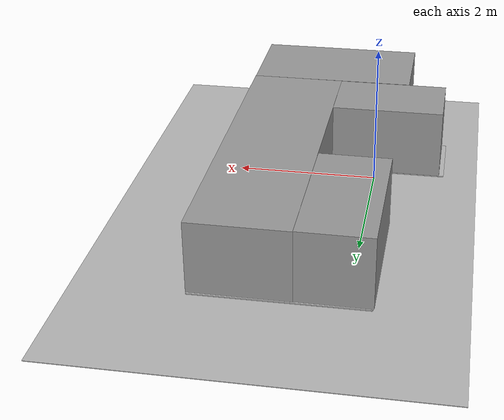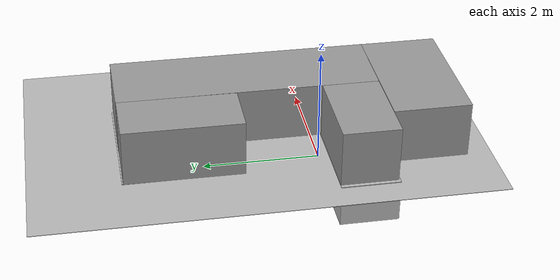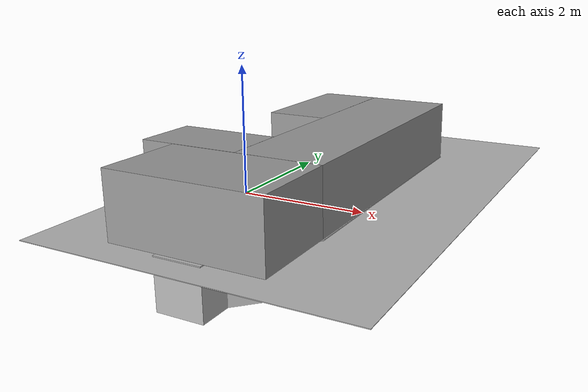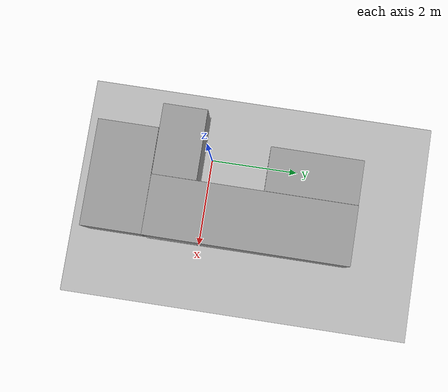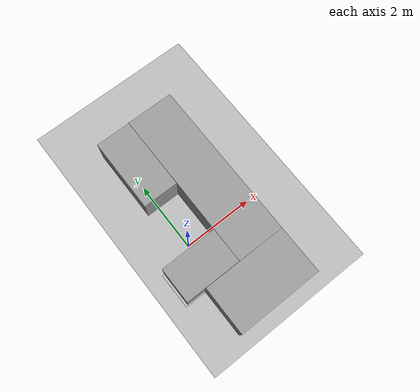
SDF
<sdf version="1.7">
 <world name="default">
  <model name="ground">
   <static>1</static>
   <link name="link">
    <pose>0 0 -0.005 0 -0 0</pose>
    <collision name="collision"><geometry><box><size>5 8 0.01</size></box></geometry></collision>
    <visual name="visual"><geometry><box><size>5 8 0.01</size></box></geometry></visual>
   </link>
   <pose>1 1 0 0 -0 0</pose>
  </model>
  <light name="lab_light" type="directional">
   <pose>0.86 1.96 2.5 -1.55 0 0</pose>
   <diffuse>0.8 0.8 0.8 1</diffuse>
   <specular>0.2 0.2 0.2 1</specular>
   <attenuation>
    <range>20</range>
    <constant>0.9</constant>
    <linear>0.01</linear>
    <quadratic>0.001</quadratic>
   </attenuation>
   <direction>0 0 -1</direction>
   <spot><inner_angle>0</inner_angle><outer_angle>0</outer_angle><falloff>0</falloff></spot>
  </light>
  <physics type="ode">
   <ode>
    <solver>
     <type>quick</type>
     <iters>100</iters>
     <precon_iters>0</precon_iters>
     <sor>1</sor>
     <use_dynamic_moi_rescaling>0</use_dynamic_moi_rescaling>
    </solver>
    <constraints>
     <cfm>0</cfm>
     <erp>0.5</erp>
     <contact_max_correcting_vel>1000</contact_max_correcting_vel>
     <contact_surface_layer>0</contact_surface_layer>
    </constraints>
   </ode>
   <real_time_update_rate>0</real_time_update_rate>
   <max_step_size>0.001</max_step_size>
   <real_time_factor>1</real_time_factor>
  </physics>
  <scene><ambient>0.4 0.4 0.4 1</ambient><background>0.7 0.7 1 1</background><shadows>1</shadows></scene>
  <gravity>0 0 -9.81</gravity>
  <magnetic_field>6e-06 2.3e-05 -4.2e-05</magnetic_field>
  <atmosphere type="adiabatic"/>
  <spherical_coordinates>
   <surface_model>EARTH_WGS84</surface_model>
   <latitude_deg>0</latitude_deg>
   <longitude_deg>0</longitude_deg>
   <elevation>0</elevation>
   <heading_deg>0</heading_deg>
  </spherical_coordinates>
  <model name="filling_line">
   <static>1</static>
   <link name="link">
    <inertial><mass>20</mass></inertial>
    <collision name="collision">
     <geometry><mesh><uri>model://filling_line/meshes/filling_line.stl</uri></mesh></geometry>
    </collision>
    <visual name="visual">
     <geometry><mesh><uri>model://filling_line/meshes/filling_line.stl</uri></mesh></geometry>
    </visual>
   </link>
   <pose>1.10668 -2.60009 -0.74 0 0 -3.13911</pose>
  </model>
  <model name="unit_box">
   <pose>1.3322 1.09656 0.514992 5e-06 1.8e-05 -0.00198</pose>
   <link name="link">
    <inertial>
     <mass>1</mass>
     <inertia>
      <ixx>0.166667</ixx>
      <ixy>0</ixy>
      <ixz>0</ixz>
      <iyy>0.166667</iyy>
      <iyz>0</iyz>
      <izz>0.166667</izz>
     </inertia>
    </inertial>
    <collision name="collision"><geometry><box><size>1.34986 4.5902 1</size></box></geometry></collision>
    <visual name="visual">
     <geometry><box><size>1.34986 4.5902 1</size></box></geometry>
     <material>
      <script><name>Gazebo/Grey</name><uri>file://media/materials/scripts/gazebo.material</uri></script>
     </material>
    </visual>
   </link>
  </model>
  <model name="unit_box_0">
   <pose>-0.147241 -0.691725 0.515 -0 -0 -0.000681</pose>
   <link name="link">
    <inertial>
     <mass>1</mass>
     <inertia>
      <ixx>0.166667</ixx>
      <ixy>0</ixy>
      <ixz>0</ixz>
      <iyy>0.166667</iyy>
      <iyz>0</iyz>
      <izz>0.166667</izz>
     </inertia>
    </inertial>
    <collision name="collision"><geometry><box><size>1.59998 1 1</size></box></geometry></collision>
    <visual name="visual">
     <geometry><box><size>1.59998 1 1</size></box></geometry>
     <material>
      <script><name>Gazebo/Grey</name><uri>file://media/materials/scripts/gazebo.material</uri></script>
     </material>
    </visual>
   </link>
  </model>
  <model name="unit_box_1">
   <pose>0.15856 2.3491 0.514223 0.001427 -0.00154 -0.002374</pose>
   <link name="link">
    <inertial>
     <mass>1</mass>
     <inertia>
      <ixx>0.166667</ixx>
      <ixy>0</ixy>
      <ixz>0</ixz>
      <iyy>0.166667</iyy>
      <iyz>0</iyz>
      <izz>0.166667</izz>
     </inertia>
    </inertial>
    <collision name="collision"><geometry><box><size>1 2.07999 1</size></box></geometry></collision>
    <visual name="visual">
     <geometry><box><size>1 2.07999 1</size></box></geometry>
     <material>
      <script><name>Gazebo/Grey</name><uri>file://media/materials/scripts/gazebo.material</uri></script>
     </material>
    </visual>
   </link>
  </model>
  <model name="unit_box_2">
   <pose>0.805186 -1.87999 0.51495 6.3e-05 0.00022 -0.000105</pose>
   <link name="link">
    <inertial>
     <mass>1</mass>
     <inertia>
      <ixx>0.166667</ixx>
      <ixy>0</ixy>
      <ixz>0</ixz>
      <iyy>0.166667</iyy>
      <iyz>0</iyz>
      <izz>0.166667</izz>
     </inertia>
    </inertial>
    <collision name="collision"><geometry><box><size>2.39001 1.36 1</size></box></geometry></collision>
    <visual name="visual">
     <geometry><box><size>2.39001 1.36 1</size></box></geometry>
     <material>
      <script><name>Gazebo/Grey</name><uri>file://media/materials/scripts/gazebo.material</uri></script>
     </material>
    </visual>
   </link>
  </model>
 </world>
</sdf>
